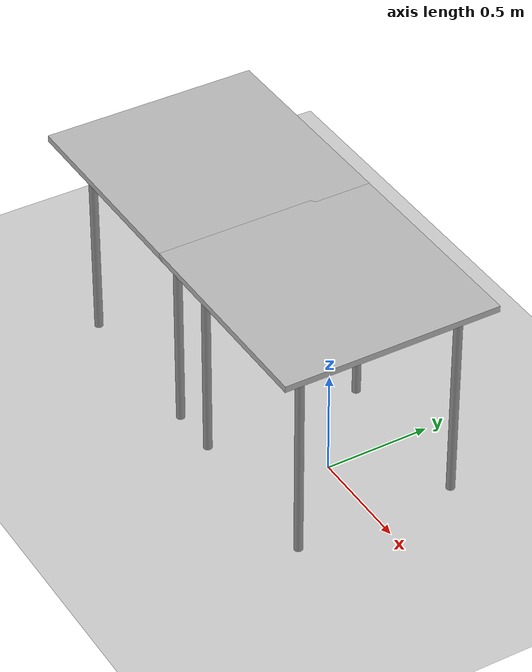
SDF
<sdf version="1.5">
 <world name="model_import_test">
  <physics name="default_physics" default="0" type="ode">
   <max_step_size>0.001</max_step_size>
   <real_time_factor>1</real_time_factor>
   <real_time_update_rate>1000</real_time_update_rate>
  </physics>
  <scene><ambient>0.5 0.5 0.5 1</ambient><background>0.7 0.7 0.7 1</background><shadows>0</shadows></scene>
  <light name="sun" type="directional">
   <cast_shadows>0</cast_shadows>
   <pose>0 0 10 0 -0 0</pose>
   <diffuse>0.8 0.8 0.8 1</diffuse>
   <specular>0.1 0.1 0.1 1</specular>
   <attenuation>
    <range>1000</range>
    <constant>0.9</constant>
    <linear>0.01</linear>
    <quadratic>0.001</quadratic>
   </attenuation>
   <direction>-0.5 0.5 -1</direction>
  </light>
  <include><uri>model://ground_plane</uri></include>
  <include><name>tile-1</name><uri>model://platform_tile</uri></include>
  <include><name>tile-2</name><uri>model://platform_tile</uri><pose>-1 0 0 0 0 0</pose></include>
  <light name="spot-light-0" type="spot">
   <pose>-0.3 0 1.68 0 1.4 3.14</pose>
   <diffuse>0.5 0.5 0.5 1</diffuse>
   <specular>0.1 0.1 0.1 1</specular>
   <direction>0 0 -1</direction>
   <attenuation>
    <range>20</range>
    <constant>0.5</constant>
    <linear>0.01</linear>
    <quadratic>0.001</quadratic>
   </attenuation>
   <spot><inner_angle>0.6</inner_angle><outer_angle>0.8</outer_angle><falloff>1.0</falloff></spot>
   <cast_shadows>0</cast_shadows>
  </light>
  <gravity>0 0 -9.8</gravity>
  <magnetic_field>6e-06 2.3e-05 -4.2e-05</magnetic_field>
  <atmosphere type="adiabatic"/>
  <spherical_coordinates>
   <surface_model>EARTH_WGS84</surface_model>
   <latitude_deg>0</latitude_deg>
   <longitude_deg>0</longitude_deg>
   <elevation>0</elevation>
   <heading_deg>0</heading_deg>
  </spherical_coordinates>
 </world>
</sdf>

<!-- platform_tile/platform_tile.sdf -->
<sdf version="1.5">
  <model name="platform_tile">
    <static>true</static>
    <link name="link">
      <collision name="surface">
        <pose>-0.01 -0.01 1.0 0 0 0</pose>
        <geometry>
          <box>
            <size>1.02 1.02 0.03</size>
          </box>
        </geometry>
        <surface>
          <friction>
            <ode>
              <mu>0.6</mu>
              <mu2>0.6</mu2>
            </ode>
          </friction>
        </surface>
      </collision>
      <visual name="surface">
        <pose>-0.01 -0.01 1.0 0 0 0</pose>
        <geometry>
          <box>
            <size>1.02 1.02 0.03</size>
          </box>
        </geometry>
        <material>
          <script>
            <uri>model://platform_tile/materials/scripts</uri>
            <uri>model://platform_tile/materials/textures</uri>
            <name>platform_tile/Diffuse</name>
          </script>
        </material>
      </visual>
      <collision name="front_left_leg">
        <pose>0.38 0.38 0.5 0 0 0</pose>
        <geometry>
          <cylinder>
            <radius>0.02</radius>
            <length>1.0</length>
          </cylinder>
        </geometry>
      </collision>
      <visual name="front_left_leg">
        <pose>0.38 0.38 0.5 0 0 0</pose>
        <geometry>
          <cylinder>
            <radius>0.02</radius>
            <length>1.0</length>
          </cylinder>
        </geometry>
        <material>
          <script>
            <uri>file://media/materials/scripts/gazebo.material</uri>
            <name>Gazebo/Grey</name>
          </script>
        </material>
      </visual>
      <collision name="front_right_leg">
        <pose>0.38 -0.38 0.5 0 0 0</pose>
        <geometry>
          <cylinder>
            <radius>0.02</radius>
            <length>1.0</length>
          </cylinder>
        </geometry>
      </collision>
      <visual name="front_right_leg">
        <pose>0.38 -0.38 0.5 0 0 0</pose>
        <geometry>
          <cylinder>
            <radius>0.02</radius>
            <length>1.0</length>
          </cylinder>
        </geometry>
        <material>
          <script>
            <uri>file://media/materials/scripts/gazebo.material</uri>
            <name>Gazebo/Grey</name>
          </script>
        </material>
      </visual>
      <collision name="back_right_leg">
        <pose>-0.38 -0.38 0.5 0 0 0</pose>
        <geometry>
          <cylinder>
            <radius>0.02</radius>
            <length>1.0</length>
          </cylinder>
        </geometry>
      </collision>
      <visual name="back_right_leg">
        <pose>-0.38 -0.38 0.5 0 0 0</pose>
        <geometry>
          <cylinder>
            <radius>0.02</radius>
            <length>1.0</length>
          </cylinder>
        </geometry>
        <material>
          <script>
            <uri>file://media/materials/scripts/gazebo.material</uri>
            <name>Gazebo/Grey</name>
          </script>
        </material>
      </visual>
      <collision name="back_left_leg">
        <pose>-0.38 0.38 0.5 0 0 0</pose>
        <geometry>
          <cylinder>
            <radius>0.02</radius>
            <length>1.0</length>
          </cylinder>
        </geometry>
      </collision>
      <visual name="back_left_leg">
        <pose>-0.38 0.38 0.5 0 0 0</pose>
        <geometry>
          <cylinder>
            <radius>0.02</radius>
            <length>1.0</length>
          </cylinder>
        </geometry>
        <material>
          <script>
            <uri>file://media/materials/scripts/gazebo.material</uri>
            <name>Gazebo/Grey</name>
          </script>
        </material>
      </visual>
    </link>
  </model>
</sdf>
